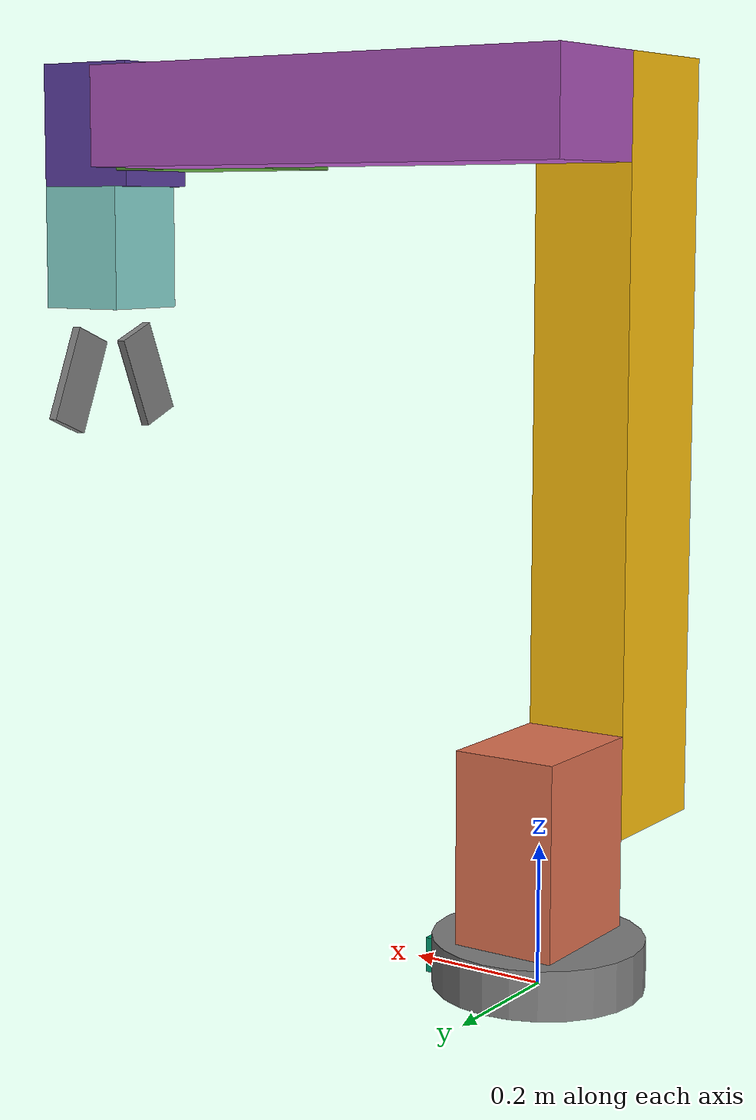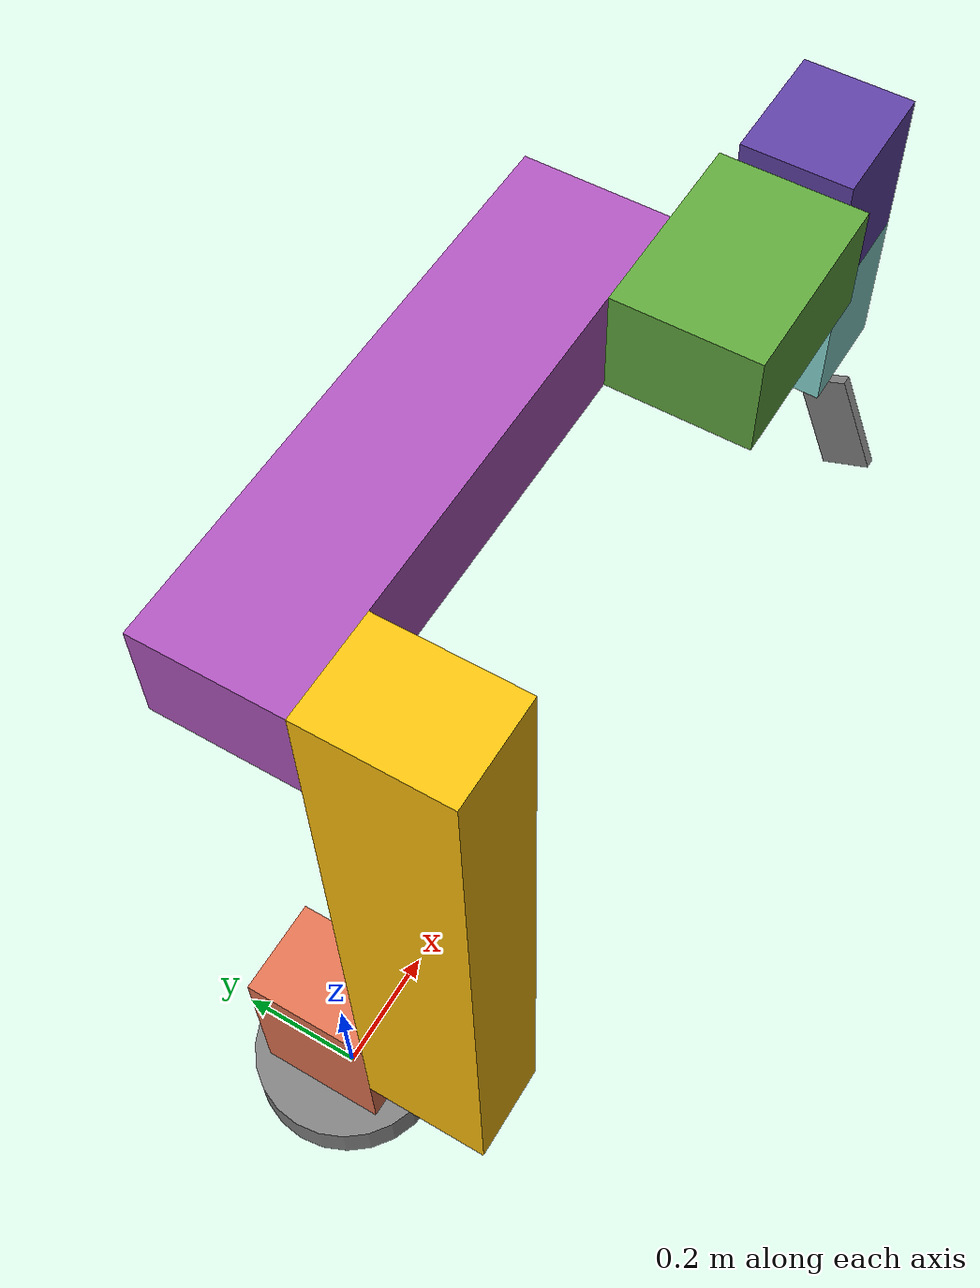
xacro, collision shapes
<?xml version="1.0"?>
<robot name="sixdof_arm" xmlns:xacro="http://www.ros.org/wiki/xacro">

    <xacro:include filename="ros2_control.xacro"/>
    <xacro:include filename="sixdof_arm_properties.urdf.xacro"/>
    <xacro:include filename="mobile_base.urdf.xacro"/>
    <xacro:include filename="lidar_sensor.urdf.xacro"/>

</robot>

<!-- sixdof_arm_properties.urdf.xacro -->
<robot xmlns:xacro="http://www.ros.org/wiki/xacro">

<!-- ===================================MARTERIALS====================================== -->
    <material name="light_black">
        <color rgba="0.5 0.5 0.5 1.0"/>
    </material>

    <material name="salmon">
        <color rgba="0.8754 0.4471 0.3176 1.0"/>
    </material>

    <material name="yellow">
        <color rgba="1 0.7569 0.0549 1.0"/>
    </material>

    <material name="purple">
        <color rgba="0.6824 0.3333 0.7373 1.0"/>
    </material>

    <material name="green">
        <color rgba="0.3725 0.6549 0.2392 1.0"/>
    </material>

    <material name="blue">
        <color rgba="0.3686 0.2509 0.6431 1.0"/>
    </material>

    <material name="blue_tifany">
        <color rgba="0.5372 0.8549 0.8274 1.0"/>
    </material>

<!-- =====================================XACROS======================================== -->
    <xacro:macro name="base_inertia" params="xyz rpy">
        <inertial>
            <origin xyz="${xyz}" rpy="${rpy}" />
            <mass value="10.6734184" />
            <inertia ixx="0.05702778" ixy="0" ixz="0"
                     iyy="0.05702779"  iyz="0"
                     izz="0.10703462" />
        </inertial>
    </xacro:macro>

    <xacro:macro name="arm1_inertia" params="xyz rpy">
        <inertial>
            <origin xyz="${xyz}" rpy="${rpy}" />
            <mass value="16.02392927" />
            <inertia ixx="0.13097774" ixy="-1.354e-8" ixz="0"
                     iyy="0.11390137"  iyz="0.00013796"
                     izz="0.06378491" />
        </inertial>
    </xacro:macro>

    <xacro:macro name="arm2_inertia" params="xyz rpy">
        <inertial>
            <origin xyz="${xyz}" rpy="${rpy}" />
            <mass value="58.29018559" />
            <inertia ixx="6.62579145" ixy="0.0000054" ixz="0"
                     iyy="6.65994246"  iyz="-4e-8"
                     izz="0.20137485" />
        </inertial>
    </xacro:macro>

    <xacro:macro name="arm3_inertia" params="xyz rpy">
        <inertial>
            <origin xyz="${xyz}" rpy="${rpy}" />
            <mass value="43.97624328" />
            <inertia ixx="0.16111702" ixy="0" ixz="-9.935e-8"
                     iyy="2.67279881"  iyz="5.713e-9"
                     izz="2.70695549" />
        </inertial>
    </xacro:macro>

    <xacro:macro name="arm4_inertia" params="xyz rpy">
        <inertial>
            <origin xyz="${xyz}" rpy="${rpy}" />
            <mass value="16.02394366" />
            <inertia ixx="0.13101946" ixy="1.335e-8" ixz="-2.826e-9"
                     iyy="0.11390118"  iyz="-0.00166483"
                     izz="0.06382633" />
        </inertial>
    </xacro:macro>

    <xacro:macro name="arm5_inertia" params="xyz rpy">
        <inertial>
            <origin xyz="${xyz}" rpy="${rpy}" />
            <mass value="11.25261767" />
            <inertia ixx="0.03965941" ixy="2.335e-9" ixz="0.00003178"
                     iyy="0.05673546"  iyz="-6.760e-10"
                     izz="0.05036553" />
        </inertial>
    </xacro:macro>

    <xacro:macro name="arm6_inertia" params="xyz rpy">
        <inertial>
            <origin xyz="${xyz}" rpy="${rpy}" />
            <mass value="9.94813346" />
            <inertia ixx="0.05211159" ixy="0" ixz="0"
                     iyy="0.05197757"  iyz="0"
                     izz="0.02702159" />
        </inertial>
    </xacro:macro>

    <xacro:macro name="gripper_inertia" params="xyz rpy">
        <inertial>
            <origin xyz="${xyz}" rpy="${rpy}" />
            <mass value="0.23129816" />
            <inertia ixx="0.00058838" ixy="-0.00002395" ixz="0"
                     iyy="0.00007385"  iyz="0"
                     izz="0.00065355" />
        </inertial>
    </xacro:macro>

    <xacro:macro name="gazebo_material" params="link ambient">
        <gazebo reference="${link}">
            <selfCollide>true</selfCollide>
            <visual>
                <material>
                    <ambient>${ambient}</ambient>
                    <diffuse>0.9 0.6 0.45 1</diffuse>
                    <specular>0.95 0.95 0.95 1</specular>
                    <emissive>0 0 0 0</emissive>
                </material>
                <mu1>0.2</mu1>
                <mu2>0.2</mu2>
                <self_collide>true</self_collide>
                <gravity>true</gravity>
            </visual>

        </gazebo>
    </xacro:macro>

    <xacro:macro name="contact_sensor" params="reference">
        <gazebo reference="${reference}">
        <sensor name="${reference}_bumper" type="contact">
            <always_on>true</always_on>
            <update_rate>50</update_rate>
            <contact>
                <collision>${reference}_collision_collision</collision>
            </contact>
            <plugin name="${reference}_contact_plugin" filename="libgazebo_ros_bumper.so">
                <ros>
                    <remapping>bumper_states:=${reference}_bumper</remapping>
                </ros>
                <alwaysOn>true</alwaysOn>
                <update_rate>50.0</update_rate>
                <frameName>${reference}</frameName>
            </plugin>
        </sensor>
    </gazebo>
    </xacro:macro>

    <xacro:macro name="transmission" params="joint_name">
        <transmission name="transmission_${joint_name}">
            <type>transmission_interface/SimpleTransmission</type>
            <joint name="joint_name">
                <hardwareInterface>velocity</hardwareInterface>
            </joint>
        </transmission>
    </xacro:macro>

<!-- ===============================MATERIAL DEFINITIONS================================ -->

    <xacro:gazebo_material link="base_link" ambient="0.5 0.5 0.5" />
    <xacro:gazebo_material link="arm1_link" ambient="0.8754 0.4471 0.3176" />
    <xacro:gazebo_material link="arm2_link" ambient="1 0.7569 0.0549" />
    <xacro:gazebo_material link="arm3_link" ambient="0.6824 0.3333 0.7373" />
    <xacro:gazebo_material link="arm4_link" ambient="0.3725 0.6549 0.2392" />
    <xacro:gazebo_material link="arm5_link" ambient="0.3686 0.2509 0.6431" />
    <xacro:gazebo_material link="arm6_link" ambient="0.5372 0.8549 0.8274" />
    <xacro:gazebo_material link="gripper1_link" ambient="0.5 0.5 0.5" />
    <xacro:gazebo_material link="gripper2_link" ambient="0.5 0.5 0.5" />

</robot>

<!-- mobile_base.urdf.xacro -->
<robot xmlns:xacro="http://www.ros.org/wiki/xacro">

    <link name="base_link">
        <visual>
            <geometry>
                <mesh filename="package://sixdof_arm_description/meshes/sixdof_arm/base_link.stl" scale="1 1 1"/>
            </geometry>
            <origin xyz="0 0 0.04" rpy="0 0 0"/>
            <material name="light_black"/>
        </visual>
        <xacro:base_inertia xyz="0 2.679e-8 0.01026544" rpy="0 0 0" />
        <collision>
            <geometry>
                <cylinder radius="0.15" length="0.07" />
            </geometry>
            <origin xyz="0 0 0.035" rpy="0 0 0"/>
        </collision>
    </link>

    <link name="arm1_link">
        <visual>
            <geometry>
                <mesh filename="package://sixdof_arm_description/meshes/sixdof_arm/link_1.stl" scale="1 1 1"/>
            </geometry>
            <origin xyz="0 0 0" rpy="0 0 0"/>
            <material name="salmon"/>
        </visual>
        <xacro:arm1_inertia xyz="0 -0.00016159 0.14671717" rpy="0 0 0" />
        <collision>
            <geometry>
                <box size="0.15 0.20 0.275" />
            </geometry>
            <origin xyz="0 0 0.1375" rpy="0 0 0"/>
        </collision>
    </link>

    <link name="arm2_link">
        <visual>
            <geometry>
                <mesh filename="package://sixdof_arm_description/meshes/sixdof_arm/link_2.stl" scale="1 1 1"/>
            </geometry>
            <origin xyz="0 0 0" rpy="0 0 -${pi/2.0}"/>
            <material name="yellow"/>
        </visual>
        <xacro:arm2_inertia xyz="-0.00008884 0 0.47100021" rpy="0 0 -${pi/2.0}" />
        <collision>
            <geometry>
                <box size="0.15 0.20 1.10" />
            </geometry>
            <origin xyz="0 0 0.475" rpy="0 0 0"/>
        </collision>
    </link>

    <link name="arm3_link">
        <visual>
            <geometry>
                <mesh filename="package://sixdof_arm_description/meshes/sixdof_arm/link_3.stl" scale="1 1 1"/>
            </geometry>
            <origin xyz="0 0 0" rpy="0 ${pi/2} 0"/>
            <material name="purple"/>
        </visual>
        <xacro:arm3_inertia xyz="0.325 0 -0.00011793" rpy="0 ${pi/2} 0" />
        <collision>
            <geometry>
                <box size="0.15 0.20 0.80" />
            </geometry>
            <origin xyz="0.325 0 0" rpy="0 ${pi/2} 0"/>
        </collision>
    </link>

    <link name="arm4_link">
        <visual>
            <geometry>
                <mesh filename="package://sixdof_arm_description/meshes/sixdof_arm/link_4.stl" scale="1 1 1"/>
            </geometry>
            <origin xyz="0 0 0" rpy="${pi} 0 0"/>
            <material name="green"/>
        </visual>
        <xacro:arm4_inertia xyz="0 0.0010614 -0.05328286" rpy="${pi} 0 0" />
        <collision>
            <geometry>
                <box size="0.15 0.20 0.275" />
            </geometry>
            <origin xyz="0 0 -0.0625" rpy="0 0 0"/>
        </collision>
    </link>

    <link name="arm5_link">
        <visual>
            <geometry>
                <mesh filename="package://sixdof_arm_description/meshes/sixdof_arm/link_5.stl" scale="1 1 1"/>
            </geometry>
            <origin xyz="0 0 0" rpy="${pi} 0 ${pi}"/>
            <material name="blue"/>
        </visual>
        <xacro:arm5_inertia xyz="-0.0002301 0 -0.08772699" rpy="${pi} 0 ${pi}" />
        <collision>
            <geometry>
                <box size="0.20 0.15 0.175" />
            </geometry>
            <origin xyz="0 0 -0.0875" rpy="0 0 0"/>
        </collision>
    </link>

    <link name="arm6_link">
        <visual>
            <geometry>
                <mesh filename="package://sixdof_arm_description/meshes/sixdof_arm/link_6.stl" scale="1 1 1"/>
            </geometry>
            <origin xyz="0 0 0" rpy="0 0 0"/>
            <material name="blue_tifany"/>
        </visual>
        <xacro:arm6_inertia xyz="0 0 0.10531595" rpy="0 0 0" />
        <collision>
            <geometry>
                <box size="0.15 0.15 0.20" />
            </geometry>
            <origin xyz="0 0 0.10" rpy="0 0 0"/>
        </collision>
    </link>

    <link name="gripper1_link">
        <visual>
            <geometry>
                <mesh filename="package://sixdof_arm_description/meshes/sixdof_arm/gripper.stl" scale="1 1 1"/>
            </geometry>
            <origin xyz="0 0 0" rpy="0 ${pi/2} 0"/>
            <material name="light_black"/>
        </visual>
        <xacro:gripper_inertia xyz="-0.0075 0.090250025 0.027995235" rpy="0 0 0" />
        <collision>
            <geometry>
                <box size="0.015 0.16050005 0.07295455" />
            </geometry>
            <origin xyz="-0.0075 0.090250025 0.027995235" rpy="0 0 0"/>
        </collision>
    </link>

    <link name="gripper2_link">
        <visual>
            <geometry>
                <mesh filename="package://sixdof_arm_description/meshes/sixdof_arm/gripper.stl" scale="1 1 1"/>
            </geometry>
            <origin xyz="0 0 0" rpy="0 ${pi/2} 0"/>
            <material name="light_black"/>
        </visual>
        <xacro:gripper_inertia xyz="-0.0075 0.090250025 0.027995235" rpy="0 0 0" />
        <collision>
            <geometry>
                <box size="0.015 0.16050005 0.07295455" />
            </geometry>
            <origin xyz="-0.0075 0.090250025 0.027995235" rpy="0 0 0"/>
        </collision>
    </link>

    <link name="world"/>

    <joint name="world_base_joint" type="fixed">
        <origin xyz="0 0 0" rpy="0 0 0"/>
        <parent link="world"/>
        <child link="base_link"/>
    </joint>

    <joint name="base_arm1_joint" type="revolute">
        <parent link="base_link" />
        <child link="arm1_link" />
        <origin xyz ="0 0 0.07" rpy="0 0 0" />
        <axis xyz="0 0 1" />
        <limit lower="0" upper="${pi}" effort="10" velocity="1.0"/>
    </joint>

    <joint name="arm1_arm2_joint" type="revolute">
        <parent link="arm1_link" />
        <child link="arm2_link" />
        <origin xyz ="0 -0.20 0.20" rpy="0 0 0" />
        <axis xyz="0 1 0" />
        <limit lower="0" upper="${pi}" effort="100" velocity="1.0"/>
    </joint>

    <joint name="arm2_arm3_joint" type="revolute">
        <parent link="arm2_link" />
        <child link="arm3_link" />
        <origin xyz ="0 0.20 0.95" rpy="0 0 0" />
        <axis xyz="0 1 0" />
        <limit lower="0" upper="${pi}" effort="10" velocity="1.0"/>
    </joint>

    <joint name="arm3_arm4_joint" type="revolute">
        <parent link="arm3_link" />
        <child link="arm4_link" />
        <origin xyz ="0.65 -0.20 0" rpy="0 -${pi/2} 0" />
        <axis xyz="0 1 0" />
        <limit lower="0" upper="${pi}" effort="10" velocity="1.0"/>
    </joint>

    <joint name="arm4_arm5_joint" type="revolute">
        <parent link="arm4_link" />
        <child link="arm5_link" />
        <origin xyz ="0 0 -0.20" rpy="0 0 ${pi}" />
        <axis xyz="0 0 1" />
        <limit lower="0" upper="${pi}" effort="10" velocity="1.0"/>
    </joint>

    <joint name="arm5_arm6_joint" type="revolute">
        <parent link="arm5_link" />
        <child link="arm6_link" />
        <origin xyz ="0.10 0 -0.1" rpy="0 ${pi/2} 0" />
        <axis xyz="0 0 1" />
        <limit lower="0" upper="${pi}" effort="10" velocity="1.0"/>
    </joint>

    <joint name="arm6_gripper1_joint" type="revolute">
        <parent link="arm6_link" />
        <child link="gripper1_link" />
        <origin xyz ="-0.0075 0.025 0.245" rpy="0 ${pi} 0" />
        <axis xyz="1 0 0" />
        <limit lower="${-pi/4}" upper="${-pi/2}" effort="10" velocity="1.0"/>
    </joint>

    <joint name="arm6_gripper2_joint" type="revolute">
        <parent link="arm6_link" />
        <child link="gripper2_link" />
        <origin xyz ="0.0075 -0.025 0.245" rpy="0 0 0" />
        <axis xyz="1 0 0" />
        <limit lower="${pi/2}" upper="${3/4*pi}" effort="10" velocity="1.0"/>
    </joint>

    <transmission name="transmission_base_arm1">
        <type>transmission_interface/SimpleTransmission</type>
        <joint name="base_arm1_joint">
            <hardwareInterface>velocity</hardwareInterface>
        </joint>
    </transmission>

    <transmission name="transmission_arm1_arm2_joint">
        <type>transmission_interface/SimpleTransmission</type>
        <joint name="arm1_arm2_joint">
            <hardwareInterface>velocity</hardwareInterface>
        </joint>
    </transmission>

    <transmission name="transmission_arm2_arm3_joint">
        <type>transmission_interface/SimpleTransmission</type>
        <joint name="arm2_arm3_joint">
            <hardwareInterface>velocity</hardwareInterface>
        </joint>
    </transmission>

    <transmission name="transmission_arm3_arm4_joint">
        <type>transmission_interface/SimpleTransmission</type>
        <joint name="arm3_arm4_joint">
            <hardwareInterface>velocity</hardwareInterface>
        </joint>
    </transmission>

    <transmission name="transmission_arm4_arm5_joint">
        <type>transmission_interface/SimpleTransmission</type>
        <joint name="arm4_arm5_joint">
            <hardwareInterface>velocity</hardwareInterface>
        </joint>
    </transmission>

    <transmission name="transmission_arm5_arm6_joint">
        <type>transmission_interface/SimpleTransmission</type>
        <joint name="arm5_arm6_joint">
            <hardwareInterface>velocity</hardwareInterface>
        </joint>
    </transmission>

    <transmission name="transmission_arm6_gripper1_joint">
        <type>transmission_interface/SimpleTransmission</type>
        <joint name="arm6_gripper1_joint">
            <hardwareInterface>velocity</hardwareInterface>
        </joint>
    </transmission>

    <transmission name="transmission_arm6_gripper2_joint">
        <type>transmission_interface/SimpleTransmission</type>
        <joint name="arm6_gripper2_joint">
            <hardwareInterface>velocity</hardwareInterface>
        </joint>
    </transmission>

</robot>

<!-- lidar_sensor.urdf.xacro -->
<robot name="sixdof_arm" xmlns:xacro="http://www.ros.org/wiki/xacro">

    <xacro:property name="lidar_length" value="0.01" />
    <xacro:property name="lidar_width" value="0.1" />
    <xacro:property name="lidar_height" value="0.05" />
    <xacro:property name="m" value="0.1" />

    <link name="lidar_link">
        <visual>
            <geometry>
                <box size="${lidar_length} ${lidar_width} ${lidar_height}" />
            </geometry>

        </visual>

        <collision>
            <geometry>
                <box size="${lidar_length} ${lidar_width} ${lidar_height}" />
            </geometry>
        </collision>

        <inertial>
            <origin xyz="0 0 0" rpy="0 0 0" />
            <mass value="${m}" />
            <inertia ixx="${(m/12) * (lidar_height*lidar_height + lidar_length*lidar_length)}" ixy="0" ixz="0"
                     iyy="${(m/12) * (lidar_width*lidar_width + lidar_length*lidar_length)}"  iyz="0"
                     izz="${(m/12) * (lidar_width*lidar_width + lidar_height*lidar_height)}" />
        </inertial>

    </link>

    <joint name="base_lidar_joint" type="fixed">
        <parent link="base_link" />
        <child link="lidar_link" />
        <origin xyz="0.15 0 ${lidar_height/2}" rpy="0 0 0" />
    </joint>

    <gazebo reference="lidar_link">
        <sensor name="lidar_sensor" type="ray">
            <pose>0 0 0 0 0 0</pose>
            <visualize>true</visualize>
            <update_rate>10.0</update_rate>
            <ray>
                <scan>
                    <horizontal>
                        <samples>180</samples>
                        <resolution>1</resolution>
                        <min_angle>-1.5708</min_angle>
                        <max_angle>1.5708</max_angle>
                    </horizontal>
                </scan>
                <range>
                    <min>0.1</min>
                    <max>2.0</max>
                    <resolution>0.01</resolution>
                </range>
            </ray>
            <plugin name="lidar" filename="libgazebo_ros_ray_sensor.so">
                <frame_name>lidar_link</frame_name>
            </plugin>
        </sensor>
    </gazebo>

</robot>
